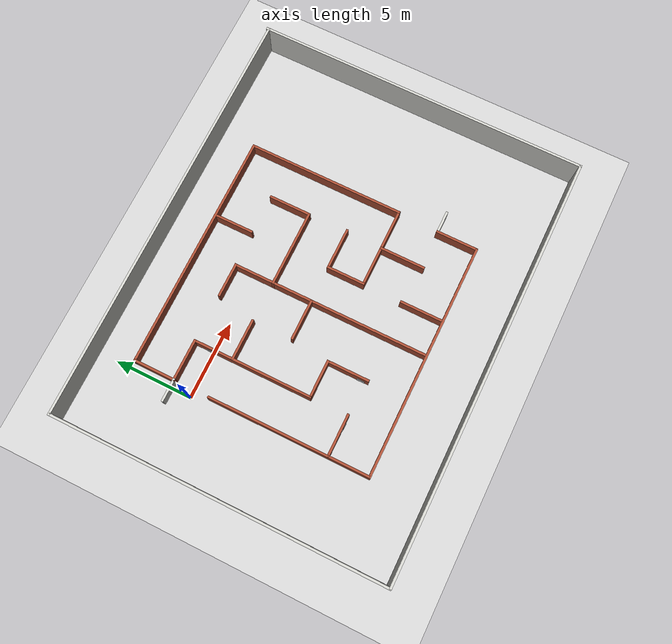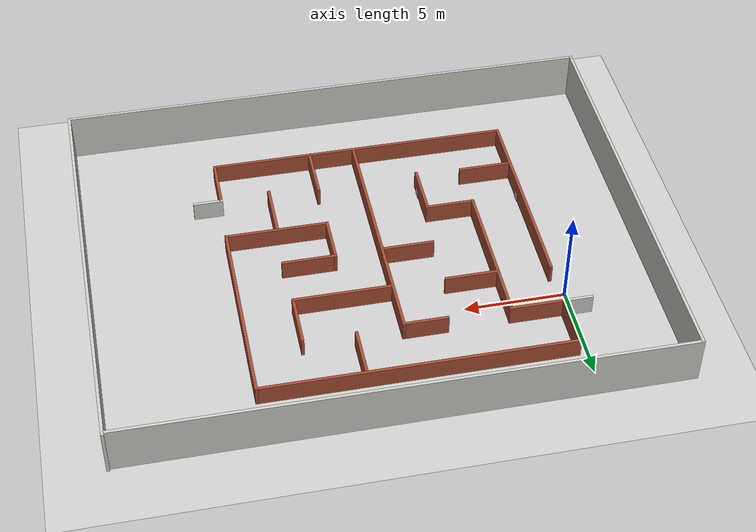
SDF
<sdf version="1.7">
 <world name="default">
  <light name="sun" type="directional">
   <pose>0 0 10 0 -0 0</pose>
   <diffuse>0.8 0.8 0.8 1</diffuse>
   <specular>0.1 0.1 0.1 1</specular>
   <attenuation>
    <range>1000</range>
    <constant>0.9</constant>
    <linear>0.01</linear>
    <quadratic>0.001</quadratic>
   </attenuation>
   <direction>-0.5 0.5 -1</direction>
   <spot><inner_angle>0</inner_angle><outer_angle>0</outer_angle><falloff>0</falloff></spot>
  </light>
  <model name="ground_plane">
   <pose>8 -3 0 0 -0 0</pose>
   <static>1</static>
   <link name="link">
    <collision name="collision">
     <geometry><plane><normal>0 0 1</normal><size>100 100</size></plane></geometry>
     <surface><friction><ode><mu>100</mu><mu2>50</mu2></ode></friction></surface>
    </collision>
    <visual name="visual">
     <cast_shadows>0</cast_shadows>
     <geometry><plane><normal>0 0 1</normal><size>100 100</size></plane></geometry>
     <material>
      <script><uri>file://media/materials/scripts/gazebo.material</uri><name>Gazebo/Grey</name></script>
     </material>
    </visual>
   </link>
  </model>
  <gravity>0 0 -9.8</gravity>
  <magnetic_field>6e-06 2.3e-05 -4.2e-05</magnetic_field>
  <atmosphere type="adiabatic"/>
  <physics name="default_physics" default="0" type="ode">
   <max_step_size>0.001</max_step_size>
   <real_time_factor>1</real_time_factor>
   <real_time_update_rate>1000</real_time_update_rate>
  </physics>
  <scene><ambient>0.4 0.4 0.4 1</ambient><background>0.7 0.7 0.7 1</background><shadows>1</shadows></scene>
  <spherical_coordinates>
   <surface_model>EARTH_WGS84</surface_model>
   <latitude_deg>0</latitude_deg>
   <longitude_deg>0</longitude_deg>
   <elevation>0</elevation>
   <heading_deg>0</heading_deg>
  </spherical_coordinates>
  <model name="Untitled">
   <pose>8 -3.8 0 0 -0 0</pose>
   <link name="Wall_0">
    <collision name="Wall_0_Collision">
     <geometry><box><size>10.5 0.15 1</size></box></geometry>
     <pose>0 0 0.5 0 -0 0</pose>
    </collision>
    <visual name="Wall_0_Visual">
     <pose>0 0 0.5 0 -0 0</pose>
     <geometry><box><size>10.5 0.15 1</size></box></geometry>
     <material>
      <script><uri>file://media/materials/scripts/gazebo.material</uri><name>Gazebo/Bricks</name></script>
      <ambient>1 1 1 1</ambient>
     </material>
    </visual>
    <pose>-7.55 -2.45813 0 0 0 -1.5708</pose>
   </link>
   <link name="Wall_1">
    <collision name="Wall_1_Collision">
     <geometry><box><size>15.25 0.15 1</size></box></geometry>
     <pose>0 0 0.5 0 -0 0</pose>
    </collision>
    <visual name="Wall_1_Visual">
     <pose>0 0 0.5 0 -0 0</pose>
     <geometry><box><size>15.25 0.15 1</size></box></geometry>
     <material>
      <script><uri>file://media/materials/scripts/gazebo.material</uri><name>Gazebo/Bricks</name></script>
      <ambient>1 1 1 1</ambient>
     </material>
    </visual>
    <pose>0 -7.63314 0 0 -0 0</pose>
   </link>
   <link name="Wall_10">
    <collision name="Wall_10_Collision">
     <geometry><box><size>2.75 0.15 1</size></box></geometry>
     <pose>0 0 0.5 0 -0 0</pose>
    </collision>
    <visual name="Wall_10_Visual">
     <pose>0 0 0.5 0 -0 0</pose>
     <geometry><box><size>2.75 0.15 1</size></box></geometry>
     <material>
      <script><uri>file://media/materials/scripts/gazebo.material</uri><name>Gazebo/Bricks</name></script>
      <ambient>1 1 1 1</ambient>
     </material>
    </visual>
    <pose>-7.55 6.33286 0 0 0 -1.5708</pose>
   </link>
   <link name="Wall_11">
    <collision name="Wall_11_Collision">
     <geometry><box><size>2.75 0.15 1</size></box></geometry>
     <pose>0 0 0.5 0 -0 0</pose>
    </collision>
    <visual name="Wall_11_Visual">
     <pose>0 0 0.5 0 -0 0</pose>
     <geometry><box><size>2.75 0.15 1</size></box></geometry>
     <material>
      <script><uri>file://media/materials/scripts/gazebo.material</uri><name>Gazebo/Bricks</name></script>
      <ambient>1 1 1 1</ambient>
     </material>
    </visual>
    <pose>-6.25 5.03287 0 0 -0 0</pose>
   </link>
   <link name="Wall_13">
    <collision name="Wall_13_Collision">
     <geometry><box><size>2.25 0.15 1</size></box></geometry>
     <pose>0 0 0.5 0 -0 0</pose>
    </collision>
    <visual name="Wall_13_Visual">
     <pose>0 0 0.5 0 -0 0</pose>
     <geometry><box><size>2.25 0.15 1</size></box></geometry>
     <material>
      <script><uri>file://media/materials/scripts/gazebo.material</uri><name>Gazebo/Bricks</name></script>
      <ambient>1 1 1 1</ambient>
     </material>
    </visual>
    <pose>-0.8 5.03287 0 0 -0 0</pose>
   </link>
   <link name="Wall_14">
    <collision name="Wall_14_Collision">
     <geometry><box><size>12.75 0.15 1</size></box></geometry>
     <pose>0 0 0.5 0 -0 0</pose>
    </collision>
    <visual name="Wall_14_Visual">
     <pose>0 0 0.5 0 -0 0</pose>
     <geometry><box><size>12.75 0.15 1</size></box></geometry>
     <material>
      <script><uri>file://media/materials/scripts/gazebo.material</uri><name>Gazebo/Bricks</name></script>
      <ambient>1 1 1 1</ambient>
     </material>
    </visual>
    <pose>0.25 -1.26713 0 0 0 -1.5708</pose>
   </link>
   <link name="Wall_16">
    <collision name="Wall_16_Collision">
     <geometry><box><size>7.75 0.15 1</size></box></geometry>
     <pose>0 0 0.5 0 -0 0</pose>
    </collision>
    <visual name="Wall_16_Visual">
     <pose>0 0 0.5 0 -0 0</pose>
     <geometry><box><size>7.75 0.15 1</size></box></geometry>
     <material>
      <script><uri>file://media/materials/scripts/gazebo.material</uri><name>Gazebo/Bricks</name></script>
      <ambient>1 1 1 1</ambient>
     </material>
    </visual>
    <pose>-4.95 1.23287 0 0 0 -1.5708</pose>
   </link>
   <link name="Wall_17">
    <collision name="Wall_17_Collision">
     <geometry><box><size>2.5 0.15 1</size></box></geometry>
     <pose>0 0 0.5 0 -0 0</pose>
    </collision>
    <visual name="Wall_17_Visual">
     <pose>0 0 0.5 0 -0 0</pose>
     <geometry><box><size>2.5 0.15 1</size></box></geometry>
     <material>
      <script><uri>file://media/materials/scripts/gazebo.material</uri><name>Gazebo/Bricks</name></script>
      <ambient>1 1 1 1</ambient>
     </material>
    </visual>
    <pose>-3.775 -2.56713 0 0 -0 0</pose>
   </link>
   <link name="Wall_18">
    <collision name="Wall_18_Collision">
     <geometry><box><size>2.75 0.15 1</size></box></geometry>
     <pose>0 0 0.5 0 -0 0</pose>
    </collision>
    <visual name="Wall_18_Visual">
     <pose>0 0 0.5 0 -0 0</pose>
     <geometry><box><size>2.75 0.15 1</size></box></geometry>
     <material>
      <script><uri>file://media/materials/scripts/gazebo.material</uri><name>Gazebo/Bricks</name></script>
      <ambient>1 1 1 1</ambient>
     </material>
    </visual>
    <pose>-2.6 -3.86714 0 0 0 -1.5708</pose>
   </link>
   <link name="Wall_2">
    <collision name="Wall_2_Collision">
     <geometry><box><size>2.75 0.15 1</size></box></geometry>
     <pose>0 0 0.5 0 -0 0</pose>
    </collision>
    <visual name="Wall_2_Visual">
     <pose>0 0 0.5 0 -0 0</pose>
     <geometry><box><size>2.75 0.15 1</size></box></geometry>
     <material>
      <script><uri>file://media/materials/scripts/gazebo.material</uri><name>Gazebo/Bricks</name></script>
      <ambient>1 1 1 1</ambient>
     </material>
    </visual>
    <pose>7.55 -6.33314 0 0 -0 1.5708</pose>
   </link>
   <link name="Wall_20">
    <collision name="Wall_20_Collision">
     <geometry><box><size>2.75 0.15 1</size></box></geometry>
     <pose>0 0 0.5 0 -0 0</pose>
    </collision>
    <visual name="Wall_20_Visual">
     <pose>0 0 0.5 0 -0 0</pose>
     <geometry><box><size>2.75 0.15 1</size></box></geometry>
     <material>
      <script><uri>file://media/materials/scripts/gazebo.material</uri><name>Gazebo/Bricks</name></script>
      <ambient>1 1 1 1</ambient>
     </material>
    </visual>
    <pose>-6.221 -4.99313 0 0 -0 0</pose>
   </link>
   <link name="Wall_22">
    <collision name="Wall_22_Collision">
     <geometry><box><size>2.6997 0.15 1</size></box></geometry>
     <pose>0 0 0.5 0 -0 0</pose>
    </collision>
    <visual name="Wall_22_Visual">
     <pose>0 0 0.5 0 -0 0</pose>
     <geometry><box><size>2.6997 0.15 1</size></box></geometry>
     <material>
      <script><uri>file://media/materials/scripts/gazebo.material</uri><name>Gazebo/Bricks</name></script>
      <ambient>1 1 1 1</ambient>
     </material>
    </visual>
    <pose>-3.657 2.52987 0 0 -0 0.001569</pose>
   </link>
   <link name="Wall_24">
    <collision name="Wall_24_Collision">
     <geometry><box><size>2.66524 0.15 1</size></box></geometry>
     <pose>0 0 0.5 0 -0 0</pose>
    </collision>
    <visual name="Wall_24_Visual">
     <pose>0 0 0.5 0 -0 0</pose>
     <geometry><box><size>2.66524 0.15 1</size></box></geometry>
     <material>
      <script><uri>file://media/materials/scripts/gazebo.material</uri><name>Gazebo/Bricks</name></script>
      <ambient>1 1 1 1</ambient>
     </material>
    </visual>
    <pose>-1.0325 -0.067135 0 0 0 -3.1408</pose>
   </link>
   <link name="Wall_26">
    <collision name="Wall_26_Collision">
     <geometry><box><size>5 0.15 1</size></box></geometry>
     <pose>0 0 0.5 0 -0 0</pose>
    </collision>
    <visual name="Wall_26_Visual">
     <pose>0 0 0.5 0 -0 0</pose>
     <geometry><box><size>5 0.15 1</size></box></geometry>
     <material>
      <script><uri>file://media/materials/scripts/gazebo.material</uri><name>Gazebo/Bricks</name></script>
      <ambient>1 1 1 1</ambient>
     </material>
    </visual>
    <pose>2.674 2.50087 0 0 -0 0</pose>
   </link>
   <link name="Wall_27">
    <collision name="Wall_27_Collision">
     <geometry><box><size>2.75 0.15 1</size></box></geometry>
     <pose>0 0 0.5 0 -0 0</pose>
    </collision>
    <visual name="Wall_27_Visual">
     <pose>0 0 0.5 0 -0 0</pose>
     <geometry><box><size>2.75 0.15 1</size></box></geometry>
     <material>
      <script><uri>file://media/materials/scripts/gazebo.material</uri><name>Gazebo/Bricks</name></script>
      <ambient>1 1 1 1</ambient>
     </material>
    </visual>
    <pose>5.099 3.80086 0 0 -0 1.5708</pose>
   </link>
   <link name="Wall_29">
    <collision name="Wall_29_Collision">
     <geometry><box><size>2.59914 0.15 1</size></box></geometry>
     <pose>0 0 0.5 0 -0 0</pose>
    </collision>
    <visual name="Wall_29_Visual">
     <pose>0 0 0.5 0 -0 0</pose>
     <geometry><box><size>2.59914 0.15 1</size></box></geometry>
     <material>
      <script><uri>file://media/materials/scripts/gazebo.material</uri><name>Gazebo/Bricks</name></script>
      <ambient>1 1 1 1</ambient>
     </material>
    </visual>
    <pose>2.5415 6.38736 0 0 0 -1.56957</pose>
   </link>
   <link name="Wall_31">
    <collision name="Wall_31_Collision">
     <geometry><box><size>5.21093 0.15 1</size></box></geometry>
     <pose>0 0 0.5 0 -0 0</pose>
    </collision>
    <visual name="Wall_31_Visual">
     <pose>0 0 0.5 0 -0 0</pose>
     <geometry><box><size>5.21093 0.15 1</size></box></geometry>
     <material>
      <script><uri>file://media/materials/scripts/gazebo.material</uri><name>Gazebo/Bricks</name></script>
      <ambient>1 1 1 1</ambient>
     </material>
    </visual>
    <pose>5.1125 -2.39364 0 0 -0 3.1414</pose>
   </link>
   <link name="Wall_32">
    <collision name="Wall_32_Collision">
     <geometry><box><size>2.5 0.15 1</size></box></geometry>
     <pose>0 0 0.5 0 -0 0</pose>
    </collision>
    <visual name="Wall_32_Visual">
     <pose>0 0 0.5 0 -0 0</pose>
     <geometry><box><size>2.5 0.15 1</size></box></geometry>
     <material>
      <script><uri>file://media/materials/scripts/gazebo.material</uri><name>Gazebo/Bricks</name></script>
      <ambient>1 1 1 1</ambient>
     </material>
    </visual>
    <pose>2.582 -1.21813 0 0 -0 1.5708</pose>
   </link>
   <link name="Wall_33">
    <collision name="Wall_33_Collision">
     <geometry><box><size>2.75 0.15 1</size></box></geometry>
     <pose>0 0 0.5 0 -0 0</pose>
    </collision>
    <visual name="Wall_33_Visual">
     <pose>0 0 0.5 0 -0 0</pose>
     <geometry><box><size>2.75 0.15 1</size></box></geometry>
     <material>
      <script><uri>file://media/materials/scripts/gazebo.material</uri><name>Gazebo/Bricks</name></script>
      <ambient>1 1 1 1</ambient>
     </material>
    </visual>
    <pose>3.882 -0.043135 0 0 -0 0</pose>
   </link>
   <link name="Wall_35">
    <collision name="Wall_35_Collision">
     <geometry><box><size>2.96482 0.15 1</size></box></geometry>
     <pose>0 0 0.5 0 -0 0</pose>
    </collision>
    <visual name="Wall_35_Visual">
     <pose>0 0 0.5 0 -0 0</pose>
     <geometry><box><size>2.96482 0.15 1</size></box></geometry>
     <material>
      <script><uri>file://media/materials/scripts/gazebo.material</uri><name>Gazebo/Bricks</name></script>
      <ambient>1 1 1 1</ambient>
     </material>
    </visual>
    <pose>5.0835 -3.80513 0 0 0 -1.57186</pose>
   </link>
   <link name="Wall_37">
    <collision name="Wall_37_Collision">
     <geometry><box><size>2.75 0.15 1</size></box></geometry>
     <pose>0 0 0.5 0 -0 0</pose>
    </collision>
    <visual name="Wall_37_Visual">
     <pose>0 0 0.5 0 -0 0</pose>
     <geometry><box><size>2.75 0.15 1</size></box></geometry>
     <material>
      <script><uri>file://media/materials/scripts/gazebo.material</uri><name>Gazebo/Bricks</name></script>
      <ambient>1 1 1 1</ambient>
     </material>
    </visual>
    <pose>2.564 -6.21213 0 0 0 -1.5708</pose>
   </link>
   <link name="Wall_40">
    <collision name="Wall_40_Collision">
     <geometry><box><size>1.5 0.15 1</size></box></geometry>
     <pose>0 0 0.5 0 -0 0</pose>
    </collision>
    <visual name="Wall_40_Visual">
     <pose>0 0 0.5 0 -0 0</pose>
     <geometry><box><size>1.5 0.15 1</size></box></geometry>
     <material>
      <script><uri>file://media/materials/scripts/gazebo.material</uri><name>Gazebo/CeilingTiled</name></script>
      <ambient>0.0980392 0.905882 0.164706 1</ambient>
     </material>
    </visual>
    <pose>-8.225 5.03287 0 0 -0 3.14159</pose>
   </link>
   <link name="Wall_42">
    <collision name="Wall_42_Collision">
     <geometry><box><size>1.5 0.15 1</size></box></geometry>
     <pose>0 0 0.5 0 -0 0</pose>
    </collision>
    <visual name="Wall_42_Visual">
     <pose>0 0 0.5 0 -0 0</pose>
     <geometry><box><size>1.5 0.15 1</size></box></geometry>
     <material>
      <script><uri>file://media/materials/scripts/gazebo.material</uri><name>Gazebo/CeilingTiled</name></script>
      <ambient>0.905882 0 0 1</ambient>
     </material>
    </visual>
    <pose>8.225 -5.03313 0 0 -0 0</pose>
   </link>
   <link name="Wall_6">
    <collision name="Wall_6_Collision">
     <geometry><box><size>10.1615 0.15 1</size></box></geometry>
     <pose>0 0 0.5 0 -0 0</pose>
    </collision>
    <visual name="Wall_6_Visual">
     <pose>0 0 0.5 0 -0 0</pose>
     <geometry><box><size>10.1615 0.15 1</size></box></geometry>
     <material>
      <script><uri>file://media/materials/scripts/gazebo.material</uri><name>Gazebo/Bricks</name></script>
      <ambient>1 1 1 1</ambient>
     </material>
    </visual>
    <pose>7.6505 2.62737 0 0 -0 1.5711</pose>
   </link>
   <link name="Wall_8">
    <collision name="Wall_8_Collision">
     <geometry><box><size>15.349 0.15 1</size></box></geometry>
     <pose>0 0 0.5 0 -0 0</pose>
    </collision>
    <visual name="Wall_8_Visual">
     <pose>0 0 0.5 0 -0 0</pose>
     <geometry><box><size>15.349 0.15 1</size></box></geometry>
     <material>
      <script><uri>file://media/materials/scripts/gazebo.material</uri><name>Gazebo/Bricks</name></script>
      <ambient>1 1 1 1</ambient>
     </material>
    </visual>
    <pose>0.0495 7.63286 0 0 -0 3.14159</pose>
   </link>
   <static>1</static>
  </model>
  <model name="Untitled_0">
   <pose>9.06897 -4.29157 0 0 -0 0</pose>
   <link name="Wall_10">
    <collision name="Wall_10_Collision">
     <geometry><box><size>27.25 0.15 2.5</size></box></geometry>
     <pose>0 0 1.25 0 -0 0</pose>
    </collision>
    <visual name="Wall_10_Visual">
     <pose>0 0 1.25 0 -0 0</pose>
     <geometry><box><size>27.25 0.15 2.5</size></box></geometry>
     <material>
      <script><uri>file://media/materials/scripts/gazebo.material</uri><name>Gazebo/CeilingTiled</name></script>
      <ambient>0 0 0 1</ambient>
     </material>
    </visual>
    <pose>0 10.5367 0 0 -0 3.14159</pose>
   </link>
   <link name="Wall_7">
    <collision name="Wall_7_Collision">
     <geometry><box><size>21.25 0.15 2.5</size></box></geometry>
     <pose>0 0 1.25 0 -0 0</pose>
    </collision>
    <visual name="Wall_7_Visual">
     <pose>0 0 1.25 0 -0 0</pose>
     <geometry><box><size>21.25 0.15 2.5</size></box></geometry>
     <material>
      <script><uri>file://media/materials/scripts/gazebo.material</uri><name>Gazebo/CeilingTiled</name></script>
      <ambient>0 0 0 1</ambient>
     </material>
    </visual>
    <pose>-13.55 -0.080297 0 0 0 -1.5708</pose>
   </link>
   <link name="Wall_8">
    <collision name="Wall_8_Collision">
     <geometry><box><size>27.25 0.15 2.5</size></box></geometry>
     <pose>0 0 1.25 0 -0 0</pose>
    </collision>
    <visual name="Wall_8_Visual">
     <pose>0 0 1.25 0 -0 0</pose>
     <geometry><box><size>27.25 0.15 2.5</size></box></geometry>
     <material>
      <script><uri>file://media/materials/scripts/gazebo.material</uri><name>Gazebo/CeilingTiled</name></script>
      <ambient>0 0 0 1</ambient>
     </material>
    </visual>
    <pose>0 -10.6303 0 0 -0 0</pose>
   </link>
   <link name="Wall_9">
    <collision name="Wall_9_Collision">
     <geometry><box><size>21.4106 0.15 2.5</size></box></geometry>
     <pose>0 0 1.25 0 -0 0</pose>
    </collision>
    <visual name="Wall_9_Visual">
     <pose>0 0 1.25 0 -0 0</pose>
     <geometry><box><size>21.4106 0.15 2.5</size></box></geometry>
     <material>
      <script><uri>file://media/materials/scripts/gazebo.material</uri><name>Gazebo/CeilingTiled</name></script>
      <ambient>0 0 0 1</ambient>
     </material>
    </visual>
    <pose>13.55 0 0 0 -0 1.5708</pose>
   </link>
   <static>1</static>
  </model>
  <model name="Marker_210">
   <static>1</static>
   <link name="link">
    <visual name="visual">
     <geometry><mesh><uri>model://marker_210/meshes/Marker_210.dae</uri><scale>1 1 1</scale></mesh></geometry>
    </visual>
   </link>
   <pose>2.96558 0.210923 0 0 -0 0</pose>
  </model>
  <model name="Marker_220">
   <static>1</static>
   <link name="link">
    <visual name="visual">
     <geometry><mesh><uri>model://marker_220/meshes/Marker_220.dae</uri><scale>1 1 1</scale></mesh></geometry>
    </visual>
   </link>
   <pose>0.547013 -7.08638 0 0 -0 0</pose>
  </model>
  <model name="Marker_230">
   <static>1</static>
   <link name="link">
    <visual name="visual">
     <geometry><mesh><uri>model://marker_230/meshes/Marker_230.dae</uri><scale>1 1 1</scale></mesh></geometry>
    </visual>
   </link>
   <pose>5.31978 -8.56639 0 0 -0 0</pose>
  </model>
  <model name="Marker_240">
   <static>1</static>
   <link name="link">
    <visual name="visual">
     <geometry><mesh><uri>model://marker_240/meshes/Marker_240.dae</uri><scale>1 1 1</scale></mesh></geometry>
    </visual>
   </link>
   <pose>2.40736 -8.88751 0 0 -0 1.52443</pose>
  </model>
  <model name="Marker_250">
   <static>1</static>
   <link name="link">
    <visual name="visual">
     <geometry><mesh><uri>model://marker_250/meshes/Marker_250.dae</uri><scale>1 1 1</scale></mesh></geometry>
    </visual>
   </link>
   <pose>5.4922 -8.35044 0 0 -0 0</pose>
  </model>
 </world>
</sdf>
